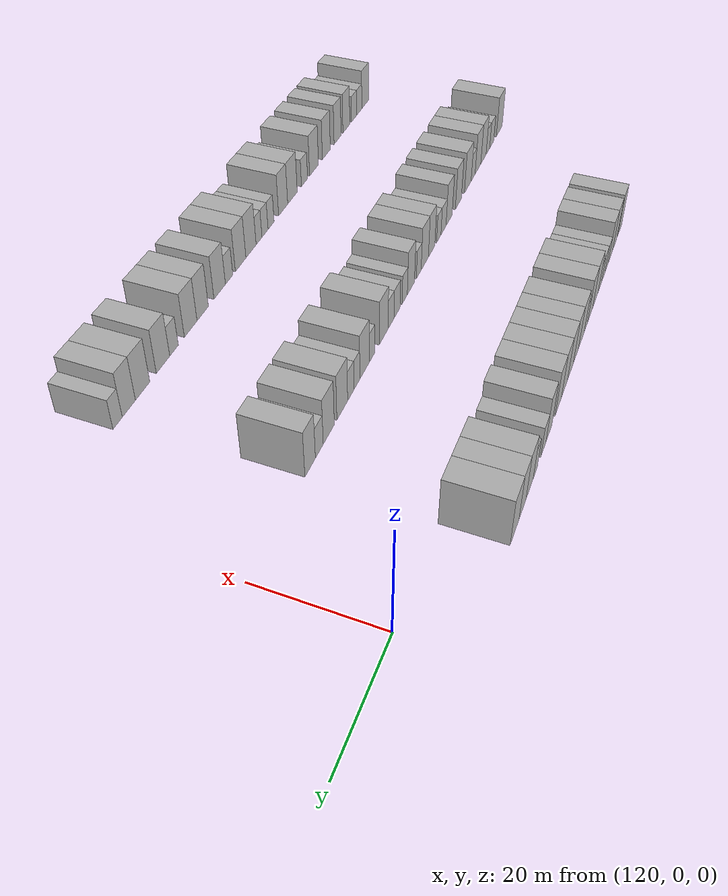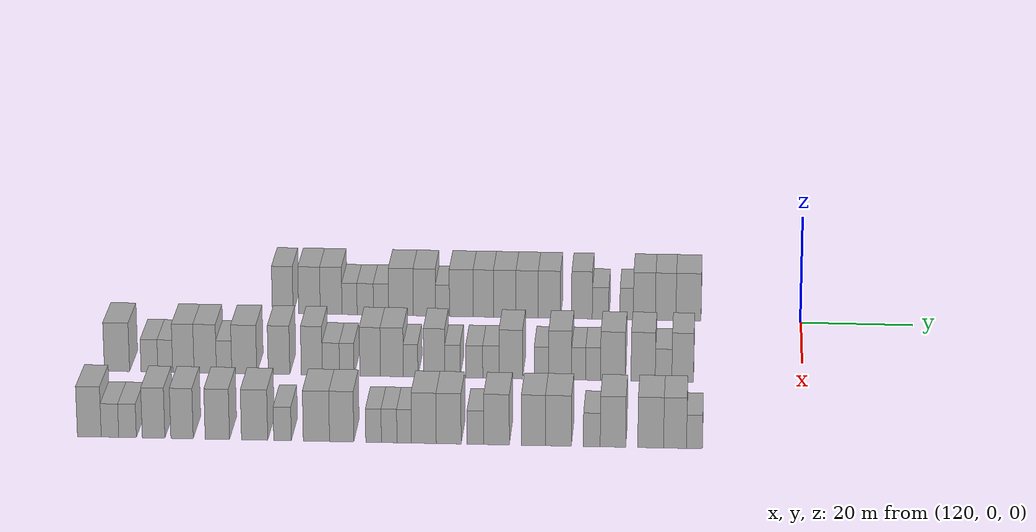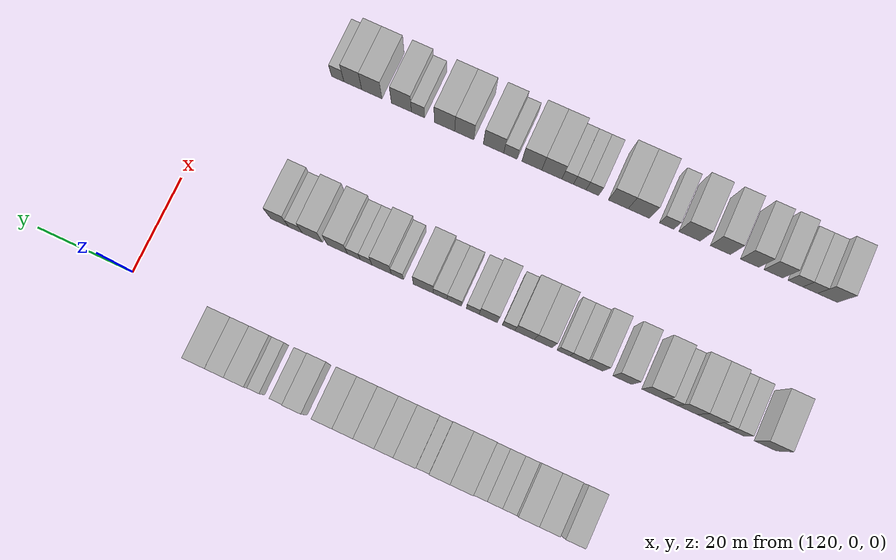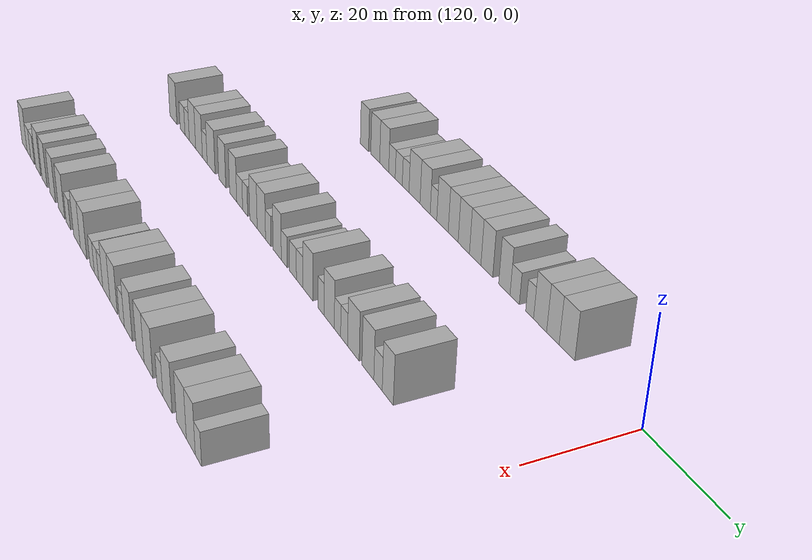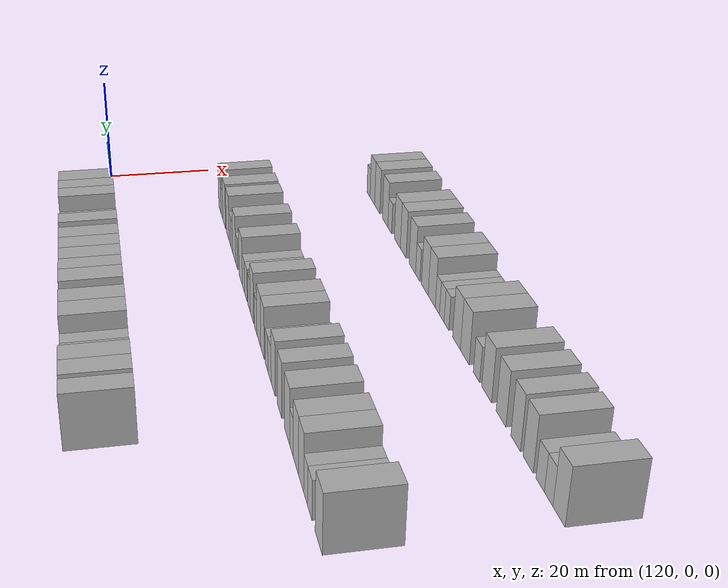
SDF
<sdf version="1.6">
 <world name="default">
  <model name="building_770">
   <static>1</static>
   <pose>115.0000 -93.2028 0 0.000000 0.000000 0.000000</pose>
   <link name="link">
    <pose>0 0 4.50 0 0 0</pose>
    <collision name="collision"><geometry><box><size>10.0000 3.7511 9.0000</size></box></geometry></collision>
    <visual name="visual">
     <cast_shadows>0</cast_shadows>
     <geometry><box><size>10.0000 3.7511 9.0000</size></box></geometry>
     <material>
      <script>
       <uri>model://HANNAS_wall/materials/scripts</uri>
       <uri>model://HANNAS_wall/materials/textures</uri>
       <name>vrc/HANNAS_wall</name>
      </script>
     </material>
    </visual>
   </link>
  </model>
  <model name="building_771">
   <static>1</static>
   <pose>115.0000 -88.3701 0 0.000000 0.000000 0.000000</pose>
   <link name="link">
    <pose>0 0 4.50 0 0 0</pose>
    <collision name="collision"><geometry><box><size>10.0000 3.9142 9.0000</size></box></geometry></collision>
    <visual name="visual">
     <cast_shadows>0</cast_shadows>
     <geometry><box><size>10.0000 3.9142 9.0000</size></box></geometry>
     <material>
      <script>
       <uri>model://HANNAS_wall/materials/scripts</uri>
       <uri>model://HANNAS_wall/materials/textures</uri>
       <name>vrc/HANNAS_wall</name>
      </script>
     </material>
    </visual>
   </link>
  </model>
  <model name="building_772">
   <static>1</static>
   <pose>115.0000 -84.4485 0 0.000000 0.000000 0.000000</pose>
   <link name="link">
    <pose>0 0 4.50 0 0 0</pose>
    <collision name="collision"><geometry><box><size>10.0000 3.9291 9.0000</size></box></geometry></collision>
    <visual name="visual">
     <cast_shadows>0</cast_shadows>
     <geometry><box><size>10.0000 3.9291 9.0000</size></box></geometry>
     <material>
      <script>
       <uri>model://HANNAS_wall/materials/scripts</uri>
       <uri>model://HANNAS_wall/materials/textures</uri>
       <name>vrc/HANNAS_wall</name>
      </script>
     </material>
    </visual>
   </link>
  </model>
  <model name="building_773">
   <static>1</static>
   <pose>115.0000 -81.1127 0 0.000000 0.000000 0.000000</pose>
   <link name="link">
    <pose>0 0 3.00 0 0 0</pose>
    <collision name="collision"><geometry><box><size>10.0000 2.7424 6.0000</size></box></geometry></collision>
    <visual name="visual">
     <cast_shadows>0</cast_shadows>
     <geometry><box><size>10.0000 2.7424 6.0000</size></box></geometry>
     <material>
      <script>
       <uri>model://HANNAS_wall/materials/scripts</uri>
       <uri>model://HANNAS_wall/materials/textures</uri>
       <name>vrc/HANNAS_wall</name>
      </script>
     </material>
    </visual>
   </link>
  </model>
  <model name="building_774">
   <static>1</static>
   <pose>115.0000 -78.2664 0 0.000000 0.000000 0.000000</pose>
   <link name="link">
    <pose>0 0 3.00 0 0 0</pose>
    <collision name="collision"><geometry><box><size>10.0000 2.9502 6.0000</size></box></geometry></collision>
    <visual name="visual">
     <cast_shadows>0</cast_shadows>
     <geometry><box><size>10.0000 2.9502 6.0000</size></box></geometry>
     <material>
      <script>
       <uri>model://HANNAS_wall/materials/scripts</uri>
       <uri>model://HANNAS_wall/materials/textures</uri>
       <name>vrc/HANNAS_wall</name>
      </script>
     </material>
    </visual>
   </link>
  </model>
  <model name="building_775">
   <static>1</static>
   <pose>115.0000 -75.4180 0 0.000000 0.000000 0.000000</pose>
   <link name="link">
    <pose>0 0 3.00 0 0 0</pose>
    <collision name="collision"><geometry><box><size>10.0000 2.7466 6.0000</size></box></geometry></collision>
    <visual name="visual">
     <cast_shadows>0</cast_shadows>
     <geometry><box><size>10.0000 2.7466 6.0000</size></box></geometry>
     <material>
      <script>
       <uri>model://HANNAS_wall/materials/scripts</uri>
       <uri>model://HANNAS_wall/materials/textures</uri>
       <name>vrc/HANNAS_wall</name>
      </script>
     </material>
    </visual>
   </link>
  </model>
  <model name="building_776">
   <static>1</static>
   <pose>115.0000 -71.8241 0 0.000000 0.000000 0.000000</pose>
   <link name="link">
    <pose>0 0 4.50 0 0 0</pose>
    <collision name="collision"><geometry><box><size>10.0000 4.4413 9.0000</size></box></geometry></collision>
    <visual name="visual">
     <cast_shadows>0</cast_shadows>
     <geometry><box><size>10.0000 4.4413 9.0000</size></box></geometry>
     <material>
      <script>
       <uri>model://HANNAS_wall/materials/scripts</uri>
       <uri>model://HANNAS_wall/materials/textures</uri>
       <name>vrc/HANNAS_wall</name>
      </script>
     </material>
    </visual>
   </link>
  </model>
  <model name="building_777">
   <static>1</static>
   <pose>115.0000 -67.6080 0 0.000000 0.000000 0.000000</pose>
   <link name="link">
    <pose>0 0 4.50 0 0 0</pose>
    <collision name="collision"><geometry><box><size>10.0000 3.9909 9.0000</size></box></geometry></collision>
    <visual name="visual">
     <cast_shadows>0</cast_shadows>
     <geometry><box><size>10.0000 3.9909 9.0000</size></box></geometry>
     <material>
      <script>
       <uri>model://HANNAS_wall/materials/scripts</uri>
       <uri>model://HANNAS_wall/materials/textures</uri>
       <name>vrc/HANNAS_wall</name>
      </script>
     </material>
    </visual>
   </link>
  </model>
  <model name="building_778">
   <static>1</static>
   <pose>115.0000 -64.3494 0 0.000000 0.000000 0.000000</pose>
   <link name="link">
    <pose>0 0 3.00 0 0 0</pose>
    <collision name="collision"><geometry><box><size>10.0000 2.5263 6.0000</size></box></geometry></collision>
    <visual name="visual">
     <cast_shadows>0</cast_shadows>
     <geometry><box><size>10.0000 2.5263 6.0000</size></box></geometry>
     <material>
      <script>
       <uri>model://HANNAS_wall/materials/scripts</uri>
       <uri>model://HANNAS_wall/materials/textures</uri>
       <name>vrc/HANNAS_wall</name>
      </script>
     </material>
    </visual>
   </link>
  </model>
  <model name="building_779">
   <static>1</static>
   <pose>115.0000 -60.9371 0 0.000000 0.000000 0.000000</pose>
   <link name="link">
    <pose>0 0 4.50 0 0 0</pose>
    <collision name="collision"><geometry><box><size>10.0000 4.2982 9.0000</size></box></geometry></collision>
    <visual name="visual">
     <cast_shadows>0</cast_shadows>
     <geometry><box><size>10.0000 4.2982 9.0000</size></box></geometry>
     <material>
      <script>
       <uri>model://HANNAS_wall/materials/scripts</uri>
       <uri>model://HANNAS_wall/materials/textures</uri>
       <name>vrc/HANNAS_wall</name>
      </script>
     </material>
    </visual>
   </link>
  </model>
  <model name="building_780">
   <static>1</static>
   <pose>115.0000 -56.9674 0 0.000000 0.000000 0.000000</pose>
   <link name="link">
    <pose>0 0 4.50 0 0 0</pose>
    <collision name="collision"><geometry><box><size>10.0000 3.6413 9.0000</size></box></geometry></collision>
    <visual name="visual">
     <cast_shadows>0</cast_shadows>
     <geometry><box><size>10.0000 3.6413 9.0000</size></box></geometry>
     <material>
      <script>
       <uri>model://HANNAS_wall/materials/scripts</uri>
       <uri>model://HANNAS_wall/materials/textures</uri>
       <name>vrc/HANNAS_wall</name>
      </script>
     </material>
    </visual>
   </link>
  </model>
  <model name="building_781">
   <static>1</static>
   <pose>115.0000 -53.1222 0 0.000000 0.000000 0.000000</pose>
   <link name="link">
    <pose>0 0 4.50 0 0 0</pose>
    <collision name="collision"><geometry><box><size>10.0000 4.0491 9.0000</size></box></geometry></collision>
    <visual name="visual">
     <cast_shadows>0</cast_shadows>
     <geometry><box><size>10.0000 4.0491 9.0000</size></box></geometry>
     <material>
      <script>
       <uri>model://HANNAS_wall/materials/scripts</uri>
       <uri>model://HANNAS_wall/materials/textures</uri>
       <name>vrc/HANNAS_wall</name>
      </script>
     </material>
    </visual>
   </link>
  </model>
  <model name="building_782">
   <static>1</static>
   <pose>115.0000 -49.0969 0 0.000000 0.000000 0.000000</pose>
   <link name="link">
    <pose>0 0 4.50 0 0 0</pose>
    <collision name="collision"><geometry><box><size>10.0000 4.0016 9.0000</size></box></geometry></collision>
    <visual name="visual">
     <cast_shadows>0</cast_shadows>
     <geometry><box><size>10.0000 4.0016 9.0000</size></box></geometry>
     <material>
      <script>
       <uri>model://HANNAS_wall/materials/scripts</uri>
       <uri>model://HANNAS_wall/materials/textures</uri>
       <name>vrc/HANNAS_wall</name>
      </script>
     </material>
    </visual>
   </link>
  </model>
  <model name="building_783">
   <static>1</static>
   <pose>115.0000 -45.0933 0 0.000000 0.000000 0.000000</pose>
   <link name="link">
    <pose>0 0 4.50 0 0 0</pose>
    <collision name="collision"><geometry><box><size>10.0000 4.0055 9.0000</size></box></geometry></collision>
    <visual name="visual">
     <cast_shadows>0</cast_shadows>
     <geometry><box><size>10.0000 4.0055 9.0000</size></box></geometry>
     <material>
      <script>
       <uri>model://HANNAS_wall/materials/scripts</uri>
       <uri>model://HANNAS_wall/materials/textures</uri>
       <name>vrc/HANNAS_wall</name>
      </script>
     </material>
    </visual>
   </link>
  </model>
  <model name="building_784">
   <static>1</static>
   <pose>115.0000 -39.2391 0 0.000000 0.000000 0.000000</pose>
   <link name="link">
    <pose>0 0 4.50 0 0 0</pose>
    <collision name="collision"><geometry><box><size>10.0000 3.7029 9.0000</size></box></geometry></collision>
    <visual name="visual">
     <cast_shadows>0</cast_shadows>
     <geometry><box><size>10.0000 3.7029 9.0000</size></box></geometry>
     <material>
      <script>
       <uri>model://HANNAS_wall/materials/scripts</uri>
       <uri>model://HANNAS_wall/materials/textures</uri>
       <name>vrc/HANNAS_wall</name>
      </script>
     </material>
    </visual>
   </link>
  </model>
  <model name="building_785">
   <static>1</static>
   <pose>115.0000 -35.9032 0 0.000000 0.000000 0.000000</pose>
   <link name="link">
    <pose>0 0 3.00 0 0 0</pose>
    <collision name="collision"><geometry><box><size>10.0000 2.9688 6.0000</size></box></geometry></collision>
    <visual name="visual">
     <cast_shadows>0</cast_shadows>
     <geometry><box><size>10.0000 2.9688 6.0000</size></box></geometry>
     <material>
      <script>
       <uri>model://HANNAS_wall/materials/scripts</uri>
       <uri>model://HANNAS_wall/materials/textures</uri>
       <name>vrc/HANNAS_wall</name>
      </script>
     </material>
    </visual>
   </link>
  </model>
  <model name="building_786">
   <static>1</static>
   <pose>115.0000 -31.2062 0 0.000000 0.000000 0.000000</pose>
   <link name="link">
    <pose>0 0 3.00 0 0 0</pose>
    <collision name="collision"><geometry><box><size>10.0000 2.4253 6.0000</size></box></geometry></collision>
    <visual name="visual">
     <cast_shadows>0</cast_shadows>
     <geometry><box><size>10.0000 2.4253 6.0000</size></box></geometry>
     <material>
      <script>
       <uri>model://HANNAS_wall/materials/scripts</uri>
       <uri>model://HANNAS_wall/materials/textures</uri>
       <name>vrc/HANNAS_wall</name>
      </script>
     </material>
    </visual>
   </link>
  </model>
  <model name="building_787">
   <static>1</static>
   <pose>115.0000 -28.0165 0 0.000000 0.000000 0.000000</pose>
   <link name="link">
    <pose>0 0 4.50 0 0 0</pose>
    <collision name="collision"><geometry><box><size>10.0000 3.9541 9.0000</size></box></geometry></collision>
    <visual name="visual">
     <cast_shadows>0</cast_shadows>
     <geometry><box><size>10.0000 3.9541 9.0000</size></box></geometry>
     <material>
      <script>
       <uri>model://HANNAS_wall/materials/scripts</uri>
       <uri>model://HANNAS_wall/materials/textures</uri>
       <name>vrc/HANNAS_wall</name>
      </script>
     </material>
    </visual>
   </link>
  </model>
  <model name="building_788">
   <static>1</static>
   <pose>115.0000 -24.1935 0 0.000000 0.000000 0.000000</pose>
   <link name="link">
    <pose>0 0 4.50 0 0 0</pose>
    <collision name="collision"><geometry><box><size>10.0000 3.6920 9.0000</size></box></geometry></collision>
    <visual name="visual">
     <cast_shadows>0</cast_shadows>
     <geometry><box><size>10.0000 3.6920 9.0000</size></box></geometry>
     <material>
      <script>
       <uri>model://HANNAS_wall/materials/scripts</uri>
       <uri>model://HANNAS_wall/materials/textures</uri>
       <name>vrc/HANNAS_wall</name>
      </script>
     </material>
    </visual>
   </link>
  </model>
  <model name="building_789">
   <static>1</static>
   <pose>115.0000 -20.1069 0 0.000000 0.000000 0.000000</pose>
   <link name="link">
    <pose>0 0 4.50 0 0 0</pose>
    <collision name="collision"><geometry><box><size>10.0000 4.4810 9.0000</size></box></geometry></collision>
    <visual name="visual">
     <cast_shadows>0</cast_shadows>
     <geometry><box><size>10.0000 4.4810 9.0000</size></box></geometry>
     <material>
      <script>
       <uri>model://HANNAS_wall/materials/scripts</uri>
       <uri>model://HANNAS_wall/materials/textures</uri>
       <name>vrc/HANNAS_wall</name>
      </script>
     </material>
    </visual>
   </link>
  </model>
  <model name="building_991">
   <static>1</static>
   <pose>145.0000 -118.9360 0 0.000000 0.000000 0.000000</pose>
   <link name="link">
    <pose>0 0 4.50 0 0 0</pose>
    <collision name="collision"><geometry><box><size>10.0000 4.3977 9.0000</size></box></geometry></collision>
    <visual name="visual">
     <cast_shadows>0</cast_shadows>
     <geometry><box><size>10.0000 4.3977 9.0000</size></box></geometry>
     <material>
      <script>
       <uri>model://HANNAS_wall/materials/scripts</uri>
       <uri>model://HANNAS_wall/materials/textures</uri>
       <name>vrc/HANNAS_wall</name>
      </script>
     </material>
    </visual>
   </link>
  </model>
  <model name="building_992">
   <static>1</static>
   <pose>145.0000 -113.2647 0 0.000000 0.000000 0.000000</pose>
   <link name="link">
    <pose>0 0 3.00 0 0 0</pose>
    <collision name="collision"><geometry><box><size>10.0000 2.9450 6.0000</size></box></geometry></collision>
    <visual name="visual">
     <cast_shadows>0</cast_shadows>
     <geometry><box><size>10.0000 2.9450 6.0000</size></box></geometry>
     <material>
      <script>
       <uri>model://HANNAS_wall/materials/scripts</uri>
       <uri>model://HANNAS_wall/materials/textures</uri>
       <name>vrc/HANNAS_wall</name>
      </script>
     </material>
    </visual>
   </link>
  </model>
  <model name="building_993">
   <static>1</static>
   <pose>145.0000 -110.4976 0 0.000000 0.000000 0.000000</pose>
   <link name="link">
    <pose>0 0 3.00 0 0 0</pose>
    <collision name="collision"><geometry><box><size>10.0000 2.5892 6.0000</size></box></geometry></collision>
    <visual name="visual">
     <cast_shadows>0</cast_shadows>
     <geometry><box><size>10.0000 2.5892 6.0000</size></box></geometry>
     <material>
      <script>
       <uri>model://HANNAS_wall/materials/scripts</uri>
       <uri>model://HANNAS_wall/materials/textures</uri>
       <name>vrc/HANNAS_wall</name>
      </script>
     </material>
    </visual>
   </link>
  </model>
  <model name="building_994">
   <static>1</static>
   <pose>145.0000 -107.3397 0 0.000000 0.000000 0.000000</pose>
   <link name="link">
    <pose>0 0 4.50 0 0 0</pose>
    <collision name="collision"><geometry><box><size>10.0000 3.7266 9.0000</size></box></geometry></collision>
    <visual name="visual">
     <cast_shadows>0</cast_shadows>
     <geometry><box><size>10.0000 3.7266 9.0000</size></box></geometry>
     <material>
      <script>
       <uri>model://HANNAS_wall/materials/scripts</uri>
       <uri>model://HANNAS_wall/materials/textures</uri>
       <name>vrc/HANNAS_wall</name>
      </script>
     </material>
    </visual>
   </link>
  </model>
  <model name="building_995">
   <static>1</static>
   <pose>145.0000 -103.5286 0 0.000000 0.000000 0.000000</pose>
   <link name="link">
    <pose>0 0 4.50 0 0 0</pose>
    <collision name="collision"><geometry><box><size>10.0000 3.8957 9.0000</size></box></geometry></collision>
    <visual name="visual">
     <cast_shadows>0</cast_shadows>
     <geometry><box><size>10.0000 3.8957 9.0000</size></box></geometry>
     <material>
      <script>
       <uri>model://HANNAS_wall/materials/scripts</uri>
       <uri>model://HANNAS_wall/materials/textures</uri>
       <name>vrc/HANNAS_wall</name>
      </script>
     </material>
    </visual>
   </link>
  </model>
  <model name="building_996">
   <static>1</static>
   <pose>145.0000 -100.2433 0 0.000000 0.000000 0.000000</pose>
   <link name="link">
    <pose>0 0 3.00 0 0 0</pose>
    <collision name="collision"><geometry><box><size>10.0000 2.6749 6.0000</size></box></geometry></collision>
    <visual name="visual">
     <cast_shadows>0</cast_shadows>
     <geometry><box><size>10.0000 2.6749 6.0000</size></box></geometry>
     <material>
      <script>
       <uri>model://HANNAS_wall/materials/scripts</uri>
       <uri>model://HANNAS_wall/materials/textures</uri>
       <name>vrc/HANNAS_wall</name>
      </script>
     </material>
    </visual>
   </link>
  </model>
  <model name="building_997">
   <static>1</static>
   <pose>145.0000 -96.7251 0 0.000000 0.000000 0.000000</pose>
   <link name="link">
    <pose>0 0 4.50 0 0 0</pose>
    <collision name="collision"><geometry><box><size>10.0000 4.3615 9.0000</size></box></geometry></collision>
    <visual name="visual">
     <cast_shadows>0</cast_shadows>
     <geometry><box><size>10.0000 4.3615 9.0000</size></box></geometry>
     <material>
      <script>
       <uri>model://HANNAS_wall/materials/scripts</uri>
       <uri>model://HANNAS_wall/materials/textures</uri>
       <name>vrc/HANNAS_wall</name>
      </script>
     </material>
    </visual>
   </link>
  </model>
  <model name="building_998">
   <static>1</static>
   <pose>145.0000 -90.6667 0 0.000000 0.000000 0.000000</pose>
   <link name="link">
    <pose>0 0 4.50 0 0 0</pose>
    <collision name="collision"><geometry><box><size>10.0000 3.7554 9.0000</size></box></geometry></collision>
    <visual name="visual">
     <cast_shadows>0</cast_shadows>
     <geometry><box><size>10.0000 3.7554 9.0000</size></box></geometry>
     <material>
      <script>
       <uri>model://HANNAS_wall/materials/scripts</uri>
       <uri>model://HANNAS_wall/materials/textures</uri>
       <name>vrc/HANNAS_wall</name>
      </script>
     </material>
    </visual>
   </link>
  </model>
  <model name="building_999">
   <static>1</static>
   <pose>145.0000 -84.9597 0 0.000000 0.000000 0.000000</pose>
   <link name="link">
    <pose>0 0 4.50 0 0 0</pose>
    <collision name="collision"><geometry><box><size>10.0000 3.6585 9.0000</size></box></geometry></collision>
    <visual name="visual">
     <cast_shadows>0</cast_shadows>
     <geometry><box><size>10.0000 3.6585 9.0000</size></box></geometry>
     <material>
      <script>
       <uri>model://HANNAS_wall/materials/scripts</uri>
       <uri>model://HANNAS_wall/materials/textures</uri>
       <name>vrc/HANNAS_wall</name>
      </script>
     </material>
    </visual>
   </link>
  </model>
  <model name="building_1000">
   <static>1</static>
   <pose>145.0000 -81.6351 0 0.000000 0.000000 0.000000</pose>
   <link name="link">
    <pose>0 0 3.00 0 0 0</pose>
    <collision name="collision"><geometry><box><size>10.0000 2.9908 6.0000</size></box></geometry></collision>
    <visual name="visual">
     <cast_shadows>0</cast_shadows>
     <geometry><box><size>10.0000 2.9908 6.0000</size></box></geometry>
     <material>
      <script>
       <uri>model://HANNAS_wall/materials/scripts</uri>
       <uri>model://HANNAS_wall/materials/textures</uri>
       <name>vrc/HANNAS_wall</name>
      </script>
     </material>
    </visual>
   </link>
  </model>
  <model name="building_1001">
   <static>1</static>
   <pose>145.0000 -78.8779 0 0.000000 0.000000 0.000000</pose>
   <link name="link">
    <pose>0 0 3.00 0 0 0</pose>
    <collision name="collision"><geometry><box><size>10.0000 2.5236 6.0000</size></box></geometry></collision>
    <visual name="visual">
     <cast_shadows>0</cast_shadows>
     <geometry><box><size>10.0000 2.5236 6.0000</size></box></geometry>
     <material>
      <script>
       <uri>model://HANNAS_wall/materials/scripts</uri>
       <uri>model://HANNAS_wall/materials/textures</uri>
       <name>vrc/HANNAS_wall</name>
      </script>
     </material>
    </visual>
   </link>
  </model>
  <model name="building_1002">
   <static>1</static>
   <pose>145.0000 -74.8161 0 0.000000 0.000000 0.000000</pose>
   <link name="link">
    <pose>0 0 4.50 0 0 0</pose>
    <collision name="collision"><geometry><box><size>10.0000 3.6002 9.0000</size></box></geometry></collision>
    <visual name="visual">
     <cast_shadows>0</cast_shadows>
     <geometry><box><size>10.0000 3.6002 9.0000</size></box></geometry>
     <material>
      <script>
       <uri>model://HANNAS_wall/materials/scripts</uri>
       <uri>model://HANNAS_wall/materials/textures</uri>
       <name>vrc/HANNAS_wall</name>
      </script>
     </material>
    </visual>
   </link>
  </model>
  <model name="building_1003">
   <static>1</static>
   <pose>145.0000 -71.0387 0 0.000000 0.000000 0.000000</pose>
   <link name="link">
    <pose>0 0 4.50 0 0 0</pose>
    <collision name="collision"><geometry><box><size>10.0000 3.9545 9.0000</size></box></geometry></collision>
    <visual name="visual">
     <cast_shadows>0</cast_shadows>
     <geometry><box><size>10.0000 3.9545 9.0000</size></box></geometry>
     <material>
      <script>
       <uri>model://HANNAS_wall/materials/scripts</uri>
       <uri>model://HANNAS_wall/materials/textures</uri>
       <name>vrc/HANNAS_wall</name>
      </script>
     </material>
    </visual>
   </link>
  </model>
  <model name="building_1004">
   <static>1</static>
   <pose>145.0000 -67.7992 0 0.000000 0.000000 0.000000</pose>
   <link name="link">
    <pose>0 0 3.00 0 0 0</pose>
    <collision name="collision"><geometry><box><size>10.0000 2.5245 6.0000</size></box></geometry></collision>
    <visual name="visual">
     <cast_shadows>0</cast_shadows>
     <geometry><box><size>10.0000 2.5245 6.0000</size></box></geometry>
     <material>
      <script>
       <uri>model://HANNAS_wall/materials/scripts</uri>
       <uri>model://HANNAS_wall/materials/textures</uri>
       <name>vrc/HANNAS_wall</name>
      </script>
     </material>
    </visual>
   </link>
  </model>
  <model name="building_1005">
   <static>1</static>
   <pose>145.0000 -63.6996 0 0.000000 0.000000 0.000000</pose>
   <link name="link">
    <pose>0 0 4.50 0 0 0</pose>
    <collision name="collision"><geometry><box><size>10.0000 3.6747 9.0000</size></box></geometry></collision>
    <visual name="visual">
     <cast_shadows>0</cast_shadows>
     <geometry><box><size>10.0000 3.6747 9.0000</size></box></geometry>
     <material>
      <script>
       <uri>model://HANNAS_wall/materials/scripts</uri>
       <uri>model://HANNAS_wall/materials/textures</uri>
       <name>vrc/HANNAS_wall</name>
      </script>
     </material>
    </visual>
   </link>
  </model>
  <model name="building_1006">
   <static>1</static>
   <pose>145.0000 -60.5450 0 0.000000 0.000000 0.000000</pose>
   <link name="link">
    <pose>0 0 3.00 0 0 0</pose>
    <collision name="collision"><geometry><box><size>10.0000 2.6344 6.0000</size></box></geometry></collision>
    <visual name="visual">
     <cast_shadows>0</cast_shadows>
     <geometry><box><size>10.0000 2.6344 6.0000</size></box></geometry>
     <material>
      <script>
       <uri>model://HANNAS_wall/materials/scripts</uri>
       <uri>model://HANNAS_wall/materials/textures</uri>
       <name>vrc/HANNAS_wall</name>
      </script>
     </material>
    </visual>
   </link>
  </model>
  <model name="building_1007">
   <static>1</static>
   <pose>145.0000 -56.7560 0 0.000000 0.000000 0.000000</pose>
   <link name="link">
    <pose>0 0 3.00 0 0 0</pose>
    <collision name="collision"><geometry><box><size>10.0000 2.9435 6.0000</size></box></geometry></collision>
    <visual name="visual">
     <cast_shadows>0</cast_shadows>
     <geometry><box><size>10.0000 2.9435 6.0000</size></box></geometry>
     <material>
      <script>
       <uri>model://HANNAS_wall/materials/scripts</uri>
       <uri>model://HANNAS_wall/materials/textures</uri>
       <name>vrc/HANNAS_wall</name>
      </script>
     </material>
    </visual>
   </link>
  </model>
  <model name="building_1008">
   <static>1</static>
   <pose>145.0000 -53.8715 0 0.000000 0.000000 0.000000</pose>
   <link name="link">
    <pose>0 0 3.00 0 0 0</pose>
    <collision name="collision"><geometry><box><size>10.0000 2.8255 6.0000</size></box></geometry></collision>
    <visual name="visual">
     <cast_shadows>0</cast_shadows>
     <geometry><box><size>10.0000 2.8255 6.0000</size></box></geometry>
     <material>
      <script>
       <uri>model://HANNAS_wall/materials/scripts</uri>
       <uri>model://HANNAS_wall/materials/textures</uri>
       <name>vrc/HANNAS_wall</name>
      </script>
     </material>
    </visual>
   </link>
  </model>
  <model name="building_1009">
   <static>1</static>
   <pose>145.0000 -50.4252 0 0.000000 0.000000 0.000000</pose>
   <link name="link">
    <pose>0 0 4.50 0 0 0</pose>
    <collision name="collision"><geometry><box><size>10.0000 4.0672 9.0000</size></box></geometry></collision>
    <visual name="visual">
     <cast_shadows>0</cast_shadows>
     <geometry><box><size>10.0000 4.0672 9.0000</size></box></geometry>
     <material>
      <script>
       <uri>model://HANNAS_wall/materials/scripts</uri>
       <uri>model://HANNAS_wall/materials/textures</uri>
       <name>vrc/HANNAS_wall</name>
      </script>
     </material>
    </visual>
   </link>
  </model>
  <model name="building_1010">
   <static>1</static>
   <pose>145.0000 -45.1346 0 0.000000 0.000000 0.000000</pose>
   <link name="link">
    <pose>0 0 3.00 0 0 0</pose>
    <collision name="collision"><geometry><box><size>10.0000 2.5140 6.0000</size></box></geometry></collision>
    <visual name="visual">
     <cast_shadows>0</cast_shadows>
     <geometry><box><size>10.0000 2.5140 6.0000</size></box></geometry>
     <material>
      <script>
       <uri>model://HANNAS_wall/materials/scripts</uri>
       <uri>model://HANNAS_wall/materials/textures</uri>
       <name>vrc/HANNAS_wall</name>
      </script>
     </material>
    </visual>
   </link>
  </model>
  <model name="building_1011">
   <static>1</static>
   <pose>145.0000 -41.8859 0 0.000000 0.000000 0.000000</pose>
   <link name="link">
    <pose>0 0 4.50 0 0 0</pose>
    <collision name="collision"><geometry><box><size>10.0000 3.9834 9.0000</size></box></geometry></collision>
    <visual name="visual">
     <cast_shadows>0</cast_shadows>
     <geometry><box><size>10.0000 3.9834 9.0000</size></box></geometry>
     <material>
      <script>
       <uri>model://HANNAS_wall/materials/scripts</uri>
       <uri>model://HANNAS_wall/materials/textures</uri>
       <name>vrc/HANNAS_wall</name>
      </script>
     </material>
    </visual>
   </link>
  </model>
  <model name="building_1012">
   <static>1</static>
   <pose>145.0000 -38.6900 0 0.000000 0.000000 0.000000</pose>
   <link name="link">
    <pose>0 0 3.00 0 0 0</pose>
    <collision name="collision"><geometry><box><size>10.0000 2.4082 6.0000</size></box></geometry></collision>
    <visual name="visual">
     <cast_shadows>0</cast_shadows>
     <geometry><box><size>10.0000 2.4082 6.0000</size></box></geometry>
     <material>
      <script>
       <uri>model://HANNAS_wall/materials/scripts</uri>
       <uri>model://HANNAS_wall/materials/textures</uri>
       <name>vrc/HANNAS_wall</name>
      </script>
     </material>
    </visual>
   </link>
  </model>
  <model name="building_1013">
   <static>1</static>
   <pose>145.0000 -36.1846 0 0.000000 0.000000 0.000000</pose>
   <link name="link">
    <pose>0 0 3.00 0 0 0</pose>
    <collision name="collision"><geometry><box><size>10.0000 2.6026 6.0000</size></box></geometry></collision>
    <visual name="visual">
     <cast_shadows>0</cast_shadows>
     <geometry><box><size>10.0000 2.6026 6.0000</size></box></geometry>
     <material>
      <script>
       <uri>model://HANNAS_wall/materials/scripts</uri>
       <uri>model://HANNAS_wall/materials/textures</uri>
       <name>vrc/HANNAS_wall</name>
      </script>
     </material>
    </visual>
   </link>
  </model>
  <model name="building_1014">
   <static>1</static>
   <pose>145.0000 -32.7589 0 0.000000 0.000000 0.000000</pose>
   <link name="link">
    <pose>0 0 4.50 0 0 0</pose>
    <collision name="collision"><geometry><box><size>10.0000 4.2489 9.0000</size></box></geometry></collision>
    <visual name="visual">
     <cast_shadows>0</cast_shadows>
     <geometry><box><size>10.0000 4.2489 9.0000</size></box></geometry>
     <material>
      <script>
       <uri>model://HANNAS_wall/materials/scripts</uri>
       <uri>model://HANNAS_wall/materials/textures</uri>
       <name>vrc/HANNAS_wall</name>
      </script>
     </material>
    </visual>
   </link>
  </model>
  <model name="building_1015">
   <static>1</static>
   <pose>145.0000 -27.5422 0 0.000000 0.000000 0.000000</pose>
   <link name="link">
    <pose>0 0 4.50 0 0 0</pose>
    <collision name="collision"><geometry><box><size>10.0000 4.1846 9.0000</size></box></geometry></collision>
    <visual name="visual">
     <cast_shadows>0</cast_shadows>
     <geometry><box><size>10.0000 4.1846 9.0000</size></box></geometry>
     <material>
      <script>
       <uri>model://HANNAS_wall/materials/scripts</uri>
       <uri>model://HANNAS_wall/materials/textures</uri>
       <name>vrc/HANNAS_wall</name>
      </script>
     </material>
    </visual>
   </link>
  </model>
  <model name="building_1016">
   <static>1</static>
   <pose>145.0000 -24.0151 0 0.000000 0.000000 0.000000</pose>
   <link name="link">
    <pose>0 0 3.00 0 0 0</pose>
    <collision name="collision"><geometry><box><size>10.0000 2.8696 6.0000</size></box></geometry></collision>
    <visual name="visual">
     <cast_shadows>0</cast_shadows>
     <geometry><box><size>10.0000 2.8696 6.0000</size></box></geometry>
     <material>
      <script>
       <uri>model://HANNAS_wall/materials/scripts</uri>
       <uri>model://HANNAS_wall/materials/textures</uri>
       <name>vrc/HANNAS_wall</name>
      </script>
     </material>
    </visual>
   </link>
  </model>
  <model name="building_1017">
   <static>1</static>
   <pose>145.0000 -20.7189 0 0.000000 0.000000 0.000000</pose>
   <link name="link">
    <pose>0 0 4.50 0 0 0</pose>
    <collision name="collision"><geometry><box><size>10.0000 3.7228 9.0000</size></box></geometry></collision>
    <visual name="visual">
     <cast_shadows>0</cast_shadows>
     <geometry><box><size>10.0000 3.7228 9.0000</size></box></geometry>
     <material>
      <script>
       <uri>model://HANNAS_wall/materials/scripts</uri>
       <uri>model://HANNAS_wall/materials/textures</uri>
       <name>vrc/HANNAS_wall</name>
      </script>
     </material>
    </visual>
   </link>
  </model>
  <model name="building_1218">
   <static>1</static>
   <pose>175.0000 -119.2609 0 0.000000 0.000000 0.000000</pose>
   <link name="link">
    <pose>0 0 4.50 0 0 0</pose>
    <collision name="collision"><geometry><box><size>10.0000 3.9999 9.0000</size></box></geometry></collision>
    <visual name="visual">
     <cast_shadows>0</cast_shadows>
     <geometry><box><size>10.0000 3.9999 9.0000</size></box></geometry>
     <material>
      <script>
       <uri>model://HANNAS_wall/materials/scripts</uri>
       <uri>model://HANNAS_wall/materials/textures</uri>
       <name>vrc/HANNAS_wall</name>
      </script>
     </material>
    </visual>
   </link>
  </model>
  <model name="building_1219">
   <static>1</static>
   <pose>175.0000 -115.7939 0 0.000000 0.000000 0.000000</pose>
   <link name="link">
    <pose>0 0 3.00 0 0 0</pose>
    <collision name="collision"><geometry><box><size>10.0000 2.9341 6.0000</size></box></geometry></collision>
    <visual name="visual">
     <cast_shadows>0</cast_shadows>
     <geometry><box><size>10.0000 2.9341 6.0000</size></box></geometry>
     <material>
      <script>
       <uri>model://HANNAS_wall/materials/scripts</uri>
       <uri>model://HANNAS_wall/materials/textures</uri>
       <name>vrc/HANNAS_wall</name>
      </script>
     </material>
    </visual>
   </link>
  </model>
  <model name="building_1220">
   <static>1</static>
   <pose>175.0000 -112.8487 0 0.000000 0.000000 0.000000</pose>
   <link name="link">
    <pose>0 0 3.00 0 0 0</pose>
    <collision name="collision"><geometry><box><size>10.0000 2.9562 6.0000</size></box></geometry></collision>
    <visual name="visual">
     <cast_shadows>0</cast_shadows>
     <geometry><box><size>10.0000 2.9562 6.0000</size></box></geometry>
     <material>
      <script>
       <uri>model://HANNAS_wall/materials/scripts</uri>
       <uri>model://HANNAS_wall/materials/textures</uri>
       <name>vrc/HANNAS_wall</name>
      </script>
     </material>
    </visual>
   </link>
  </model>
  <model name="building_1221">
   <static>1</static>
   <pose>175.0000 -108.4784 0 0.000000 0.000000 0.000000</pose>
   <link name="link">
    <pose>0 0 4.50 0 0 0</pose>
    <collision name="collision"><geometry><box><size>10.0000 3.7844 9.0000</size></box></geometry></collision>
    <visual name="visual">
     <cast_shadows>0</cast_shadows>
     <geometry><box><size>10.0000 3.7844 9.0000</size></box></geometry>
     <material>
      <script>
       <uri>model://HANNAS_wall/materials/scripts</uri>
       <uri>model://HANNAS_wall/materials/textures</uri>
       <name>vrc/HANNAS_wall</name>
      </script>
     </material>
    </visual>
   </link>
  </model>
  <model name="building_1222">
   <static>1</static>
   <pose>175.0000 -103.7088 0 0.000000 0.000000 0.000000</pose>
   <link name="link">
    <pose>0 0 4.50 0 0 0</pose>
    <collision name="collision"><geometry><box><size>10.0000 3.7549 9.0000</size></box></geometry></collision>
    <visual name="visual">
     <cast_shadows>0</cast_shadows>
     <geometry><box><size>10.0000 3.7549 9.0000</size></box></geometry>
     <material>
      <script>
       <uri>model://HANNAS_wall/materials/scripts</uri>
       <uri>model://HANNAS_wall/materials/textures</uri>
       <name>vrc/HANNAS_wall</name>
      </script>
     </material>
    </visual>
   </link>
  </model>
  <model name="building_1223">
   <static>1</static>
   <pose>175.0000 -97.7912 0 0.000000 0.000000 0.000000</pose>
   <link name="link">
    <pose>0 0 4.50 0 0 0</pose>
    <collision name="collision"><geometry><box><size>10.0000 4.0803 9.0000</size></box></geometry></collision>
    <visual name="visual">
     <cast_shadows>0</cast_shadows>
     <geometry><box><size>10.0000 4.0803 9.0000</size></box></geometry>
     <material>
      <script>
       <uri>model://HANNAS_wall/materials/scripts</uri>
       <uri>model://HANNAS_wall/materials/textures</uri>
       <name>vrc/HANNAS_wall</name>
      </script>
     </material>
    </visual>
   </link>
  </model>
  <model name="building_1224">
   <static>1</static>
   <pose>175.0000 -91.5544 0 0.000000 0.000000 0.000000</pose>
   <link name="link">
    <pose>0 0 4.50 0 0 0</pose>
    <collision name="collision"><geometry><box><size>10.0000 4.3934 9.0000</size></box></geometry></collision>
    <visual name="visual">
     <cast_shadows>0</cast_shadows>
     <geometry><box><size>10.0000 4.3934 9.0000</size></box></geometry>
     <material>
      <script>
       <uri>model://HANNAS_wall/materials/scripts</uri>
       <uri>model://HANNAS_wall/materials/textures</uri>
       <name>vrc/HANNAS_wall</name>
      </script>
     </material>
    </visual>
   </link>
  </model>
  <model name="building_1225">
   <static>1</static>
   <pose>175.0000 -86.8851 0 0.000000 0.000000 0.000000</pose>
   <link name="link">
    <pose>0 0 3.00 0 0 0</pose>
    <collision name="collision"><geometry><box><size>10.0000 2.9451 6.0000</size></box></geometry></collision>
    <visual name="visual">
     <cast_shadows>0</cast_shadows>
     <geometry><box><size>10.0000 2.9451 6.0000</size></box></geometry>
     <material>
      <script>
       <uri>model://HANNAS_wall/materials/scripts</uri>
       <uri>model://HANNAS_wall/materials/textures</uri>
       <name>vrc/HANNAS_wall</name>
      </script>
     </material>
    </visual>
   </link>
  </model>
  <model name="building_1226">
   <static>1</static>
   <pose>175.0000 -81.2239 0 0.000000 0.000000 0.000000</pose>
   <link name="link">
    <pose>0 0 4.50 0 0 0</pose>
    <collision name="collision"><geometry><box><size>10.0000 4.3773 9.0000</size></box></geometry></collision>
    <visual name="visual">
     <cast_shadows>0</cast_shadows>
     <geometry><box><size>10.0000 4.3773 9.0000</size></box></geometry>
     <material>
      <script>
       <uri>model://HANNAS_wall/materials/scripts</uri>
       <uri>model://HANNAS_wall/materials/textures</uri>
       <name>vrc/HANNAS_wall</name>
      </script>
     </material>
    </visual>
   </link>
  </model>
  <model name="building_1227">
   <static>1</static>
   <pose>175.0000 -77.0051 0 0.000000 0.000000 0.000000</pose>
   <link name="link">
    <pose>0 0 4.50 0 0 0</pose>
    <collision name="collision"><geometry><box><size>10.0000 4.0604 9.0000</size></box></geometry></collision>
    <visual name="visual">
     <cast_shadows>0</cast_shadows>
     <geometry><box><size>10.0000 4.0604 9.0000</size></box></geometry>
     <material>
      <script>
       <uri>model://HANNAS_wall/materials/scripts</uri>
       <uri>model://HANNAS_wall/materials/textures</uri>
       <name>vrc/HANNAS_wall</name>
      </script>
     </material>
    </visual>
   </link>
  </model>
  <model name="building_1228">
   <static>1</static>
   <pose>175.0000 -71.6724 0 0.000000 0.000000 0.000000</pose>
   <link name="link">
    <pose>0 0 3.00 0 0 0</pose>
    <collision name="collision"><geometry><box><size>10.0000 2.6049 6.0000</size></box></geometry></collision>
    <visual name="visual">
     <cast_shadows>0</cast_shadows>
     <geometry><box><size>10.0000 2.6049 6.0000</size></box></geometry>
     <material>
      <script>
       <uri>model://HANNAS_wall/materials/scripts</uri>
       <uri>model://HANNAS_wall/materials/textures</uri>
       <name>vrc/HANNAS_wall</name>
      </script>
     </material>
    </visual>
   </link>
  </model>
  <model name="building_1229">
   <static>1</static>
   <pose>175.0000 -69.0747 0 0.000000 0.000000 0.000000</pose>
   <link name="link">
    <pose>0 0 3.00 0 0 0</pose>
    <collision name="collision"><geometry><box><size>10.0000 2.5904 6.0000</size></box></geometry></collision>
    <visual name="visual">
     <cast_shadows>0</cast_shadows>
     <geometry><box><size>10.0000 2.5904 6.0000</size></box></geometry>
     <material>
      <script>
       <uri>model://HANNAS_wall/materials/scripts</uri>
       <uri>model://HANNAS_wall/materials/textures</uri>
       <name>vrc/HANNAS_wall</name>
      </script>
     </material>
    </visual>
   </link>
  </model>
  <model name="building_1230">
   <static>1</static>
   <pose>175.0000 -66.5692 0 0.000000 0.000000 0.000000</pose>
   <link name="link">
    <pose>0 0 3.00 0 0 0</pose>
    <collision name="collision"><geometry><box><size>10.0000 2.4205 6.0000</size></box></geometry></collision>
    <visual name="visual">
     <cast_shadows>0</cast_shadows>
     <geometry><box><size>10.0000 2.4205 6.0000</size></box></geometry>
     <material>
      <script>
       <uri>model://HANNAS_wall/materials/scripts</uri>
       <uri>model://HANNAS_wall/materials/textures</uri>
       <name>vrc/HANNAS_wall</name>
      </script>
     </material>
    </visual>
   </link>
  </model>
  <model name="building_1231">
   <static>1</static>
   <pose>175.0000 -63.2871 0 0.000000 0.000000 0.000000</pose>
   <link name="link">
    <pose>0 0 4.50 0 0 0</pose>
    <collision name="collision"><geometry><box><size>10.0000 4.1437 9.0000</size></box></geometry></collision>
    <visual name="visual">
     <cast_shadows>0</cast_shadows>
     <geometry><box><size>10.0000 4.1437 9.0000</size></box></geometry>
     <material>
      <script>
       <uri>model://HANNAS_wall/materials/scripts</uri>
       <uri>model://HANNAS_wall/materials/textures</uri>
       <name>vrc/HANNAS_wall</name>
      </script>
     </material>
    </visual>
   </link>
  </model>
  <model name="building_1232">
   <static>1</static>
   <pose>175.0000 -59.1460 0 0.000000 0.000000 0.000000</pose>
   <link name="link">
    <pose>0 0 4.50 0 0 0</pose>
    <collision name="collision"><geometry><box><size>10.0000 4.1385 9.0000</size></box></geometry></collision>
    <visual name="visual">
     <cast_shadows>0</cast_shadows>
     <geometry><box><size>10.0000 4.1385 9.0000</size></box></geometry>
     <material>
      <script>
       <uri>model://HANNAS_wall/materials/scripts</uri>
       <uri>model://HANNAS_wall/materials/textures</uri>
       <name>vrc/HANNAS_wall</name>
      </script>
     </material>
    </visual>
   </link>
  </model>
  <model name="building_1233">
   <static>1</static>
   <pose>175.0000 -54.6861 0 0.000000 0.000000 0.000000</pose>
   <link name="link">
    <pose>0 0 3.00 0 0 0</pose>
    <collision name="collision"><geometry><box><size>10.0000 2.7814 6.0000</size></box></geometry></collision>
    <visual name="visual">
     <cast_shadows>0</cast_shadows>
     <geometry><box><size>10.0000 2.7814 6.0000</size></box></geometry>
     <material>
      <script>
       <uri>model://HANNAS_wall/materials/scripts</uri>
       <uri>model://HANNAS_wall/materials/textures</uri>
       <name>vrc/HANNAS_wall</name>
      </script>
     </material>
    </visual>
   </link>
  </model>
  <model name="building_1234">
   <static>1</static>
   <pose>175.0000 -51.1751 0 0.000000 0.000000 0.000000</pose>
   <link name="link">
    <pose>0 0 4.50 0 0 0</pose>
    <collision name="collision"><geometry><box><size>10.0000 4.2405 9.0000</size></box></geometry></collision>
    <visual name="visual">
     <cast_shadows>0</cast_shadows>
     <geometry><box><size>10.0000 4.2405 9.0000</size></box></geometry>
     <material>
      <script>
       <uri>model://HANNAS_wall/materials/scripts</uri>
       <uri>model://HANNAS_wall/materials/textures</uri>
       <name>vrc/HANNAS_wall</name>
      </script>
     </material>
    </visual>
   </link>
  </model>
  <model name="building_1235">
   <static>1</static>
   <pose>175.0000 -45.0557 0 0.000000 0.000000 0.000000</pose>
   <link name="link">
    <pose>0 0 4.50 0 0 0</pose>
    <collision name="collision"><geometry><box><size>10.0000 3.9983 9.0000</size></box></geometry></collision>
    <visual name="visual">
     <cast_shadows>0</cast_shadows>
     <geometry><box><size>10.0000 3.9983 9.0000</size></box></geometry>
     <material>
      <script>
       <uri>model://HANNAS_wall/materials/scripts</uri>
       <uri>model://HANNAS_wall/materials/textures</uri>
       <name>vrc/HANNAS_wall</name>
      </script>
     </material>
    </visual>
   </link>
  </model>
  <model name="building_1236">
   <static>1</static>
   <pose>175.0000 -40.9003 0 0.000000 0.000000 0.000000</pose>
   <link name="link">
    <pose>0 0 4.50 0 0 0</pose>
    <collision name="collision"><geometry><box><size>10.0000 4.3124 9.0000</size></box></geometry></collision>
    <visual name="visual">
     <cast_shadows>0</cast_shadows>
     <geometry><box><size>10.0000 4.3124 9.0000</size></box></geometry>
     <material>
      <script>
       <uri>model://HANNAS_wall/materials/scripts</uri>
       <uri>model://HANNAS_wall/materials/textures</uri>
       <name>vrc/HANNAS_wall</name>
      </script>
     </material>
    </visual>
   </link>
  </model>
  <model name="building_1237">
   <static>1</static>
   <pose>175.0000 -35.3485 0 0.000000 0.000000 0.000000</pose>
   <link name="link">
    <pose>0 0 3.00 0 0 0</pose>
    <collision name="collision"><geometry><box><size>10.0000 2.7914 6.0000</size></box></geometry></collision>
    <visual name="visual">
     <cast_shadows>0</cast_shadows>
     <geometry><box><size>10.0000 2.7914 6.0000</size></box></geometry>
     <material>
      <script>
       <uri>model://HANNAS_wall/materials/scripts</uri>
       <uri>model://HANNAS_wall/materials/textures</uri>
       <name>vrc/HANNAS_wall</name>
      </script>
     </material>
    </visual>
   </link>
  </model>
  <model name="building_1238">
   <static>1</static>
   <pose>175.0000 -31.8347 0 0.000000 0.000000 0.000000</pose>
   <link name="link">
    <pose>0 0 4.50 0 0 0</pose>
    <collision name="collision"><geometry><box><size>10.0000 4.2360 9.0000</size></box></geometry></collision>
    <visual name="visual">
     <cast_shadows>0</cast_shadows>
     <geometry><box><size>10.0000 4.2360 9.0000</size></box></geometry>
     <material>
      <script>
       <uri>model://HANNAS_wall/materials/scripts</uri>
       <uri>model://HANNAS_wall/materials/textures</uri>
       <name>vrc/HANNAS_wall</name>
      </script>
     </material>
    </visual>
   </link>
  </model>
  <model name="building_1239">
   <static>1</static>
   <pose>175.0000 -25.5733 0 0.000000 0.000000 0.000000</pose>
   <link name="link">
    <pose>0 0 4.50 0 0 0</pose>
    <collision name="collision"><geometry><box><size>10.0000 4.2869 9.0000</size></box></geometry></collision>
    <visual name="visual">
     <cast_shadows>0</cast_shadows>
     <geometry><box><size>10.0000 4.2869 9.0000</size></box></geometry>
     <material>
      <script>
       <uri>model://HANNAS_wall/materials/scripts</uri>
       <uri>model://HANNAS_wall/materials/textures</uri>
       <name>vrc/HANNAS_wall</name>
      </script>
     </material>
    </visual>
   </link>
  </model>
  <model name="building_1240">
   <static>1</static>
   <pose>175.0000 -21.5328 0 0.000000 0.000000 0.000000</pose>
   <link name="link">
    <pose>0 0 4.50 0 0 0</pose>
    <collision name="collision"><geometry><box><size>10.0000 3.7941 9.0000</size></box></geometry></collision>
    <visual name="visual">
     <cast_shadows>0</cast_shadows>
     <geometry><box><size>10.0000 3.7941 9.0000</size></box></geometry>
     <material>
      <script>
       <uri>model://HANNAS_wall/materials/scripts</uri>
       <uri>model://HANNAS_wall/materials/textures</uri>
       <name>vrc/HANNAS_wall</name>
      </script>
     </material>
    </visual>
   </link>
  </model>
  <model name="building_1241">
   <static>1</static>
   <pose>175.0000 -18.3234 0 0.000000 0.000000 0.000000</pose>
   <link name="link">
    <pose>0 0 3.00 0 0 0</pose>
    <collision name="collision"><geometry><box><size>10.0000 2.6246 6.0000</size></box></geometry></collision>
    <visual name="visual">
     <cast_shadows>0</cast_shadows>
     <geometry><box><size>10.0000 2.6246 6.0000</size></box></geometry>
     <material>
      <script>
       <uri>model://HANNAS_wall/materials/scripts</uri>
       <uri>model://HANNAS_wall/materials/textures</uri>
       <name>vrc/HANNAS_wall</name>
      </script>
     </material>
    </visual>
   </link>
  </model>
 </world>
</sdf>
